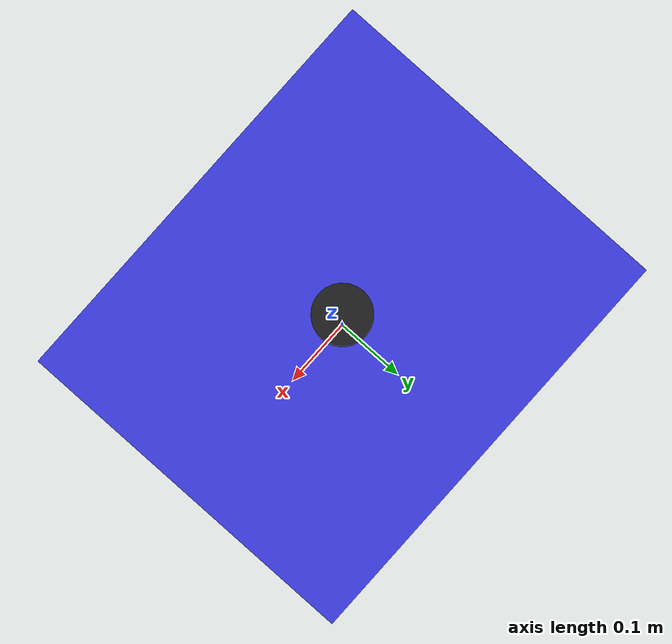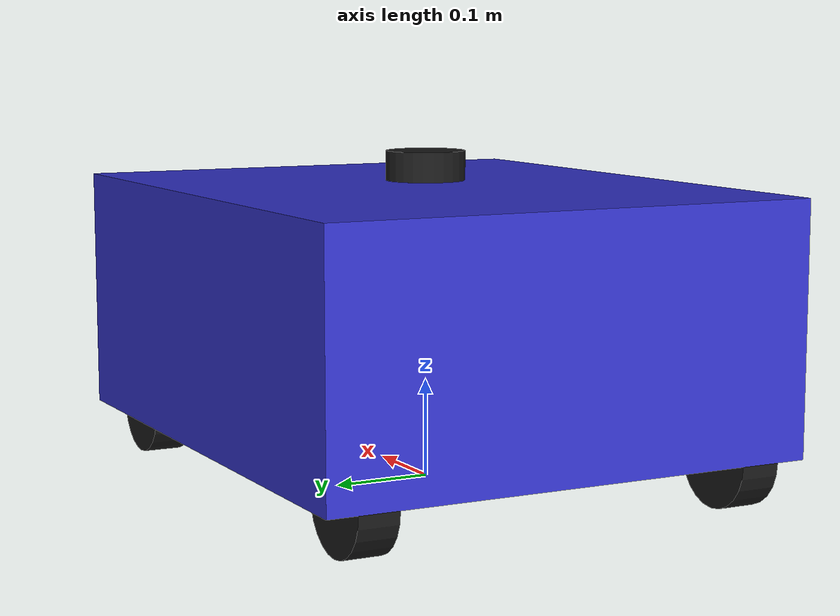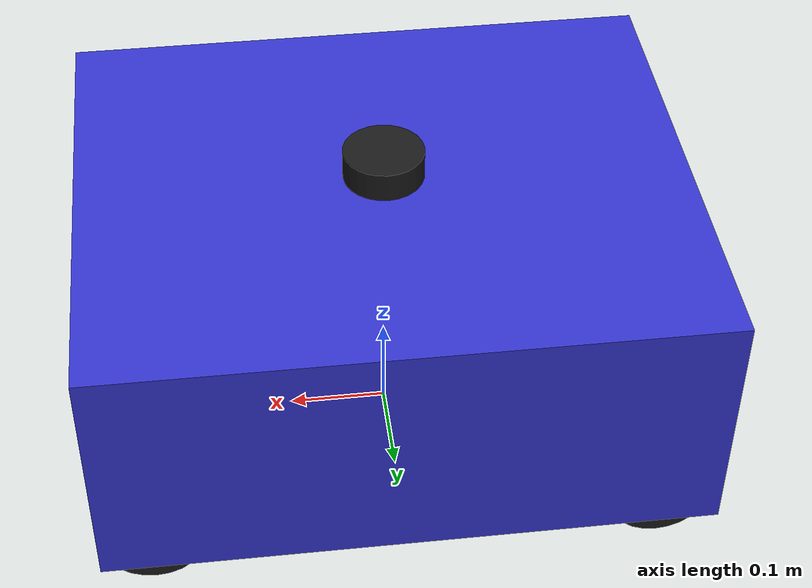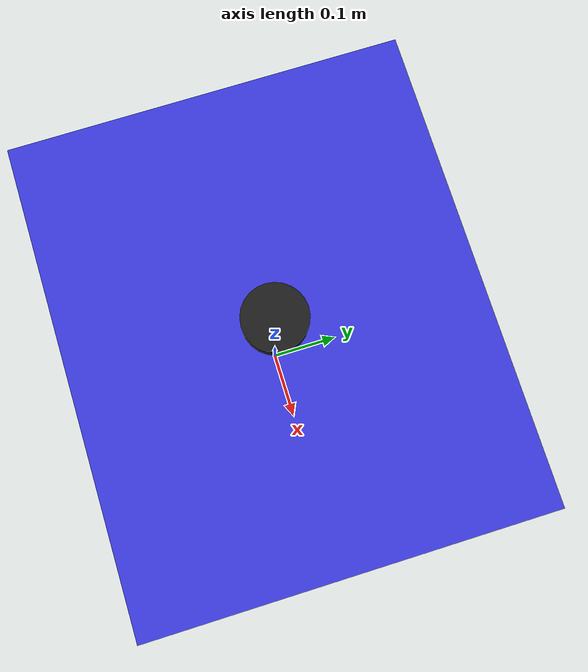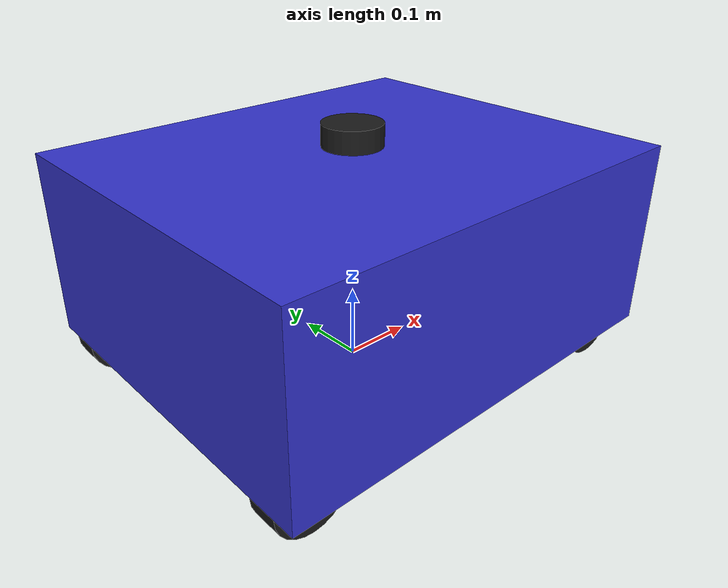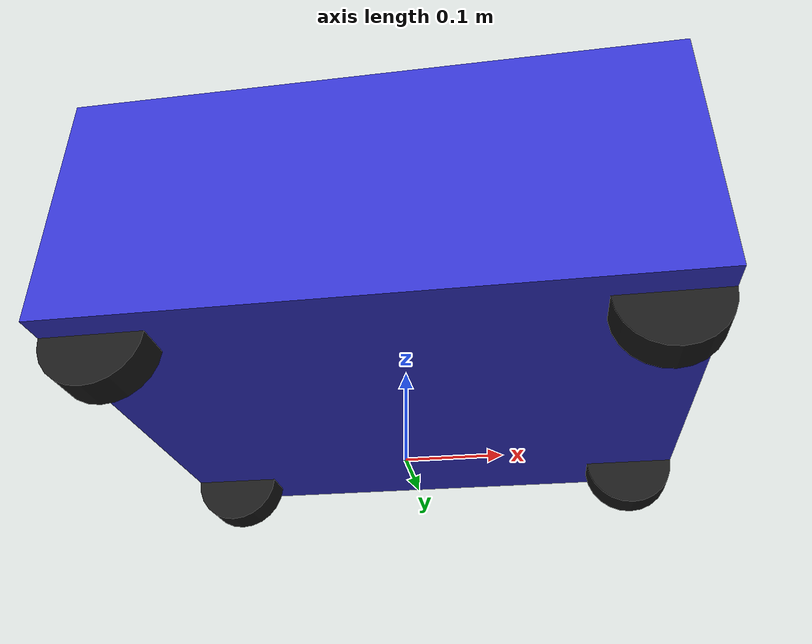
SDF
<?xml version="1.0" ?>
<sdf version="1.9">
  <model name="uni_agv">
    <self_collide>false</self_collide>
    <link name="chassis">
      <pose>0 0 0.175 0 0 0</pose>
      <inertial>
        <mass>30.0</mass>
        <inertia>
          <ixx>0.781250</ixx>
          <ixy>0</ixy>
          <ixz>0</ixz>
          <iyy>1.056250</iyy>
          <iyz>0</iyz>
          <izz>1.525000</izz>
        </inertia>
      </inertial>
      <visual name="chassis_visual">
        <geometry>
          <box>
            <size>0.6 0.5 0.25</size>
          </box>
        </geometry>
        <material>
          <ambient>0.2 0.2 0.8 1.0</ambient>
          <diffuse>0.2 0.2 0.8 1.0</diffuse>
        </material>
      </visual>
      <collision name="chassis_collision">
        <geometry>
          <box>
            <size>0.6 0.5 0.25</size>
          </box>
        </geometry>
      </collision>
    </link>
    <link name="front_left_wheel">
      <pose>0.25 0.2 0.05 1.5707963267948966 0 0</pose>
      <inertial>
        <mass>1.0</mass>
        <inertia>
          <ixx>0.000758</ixx>
          <ixy>0</ixy>
          <ixz>0</ixz>
          <iyy>0.000758</iyy>
          <iyz>0</iyz>
          <izz>0.001250</izz>
        </inertia>
      </inertial>
      <visual name="front_left_wheel_visual">
        <geometry>
          <cylinder>
            <radius>0.05</radius>
            <length>0.04</length>
          </cylinder>
        </geometry>
        <material>
          <ambient>0.1 0.1 0.1 1.0</ambient>
          <diffuse>0.1 0.1 0.1 1.0</diffuse>
        </material>
      </visual>
      <collision name="front_left_wheel_collision">
        <geometry>
          <cylinder>
            <radius>0.05</radius>
            <length>0.04</length>
          </cylinder>
        </geometry>
        <surface>
          <friction>
            <ode>
              <mu>1.0</mu>
              <mu2>1.0</mu2>
            </ode>
          </friction>
        </surface>
      </collision>
    </link>
    <joint name="front_left_wheel_joint" type="revolute">
      <parent>chassis</parent>
      <child>front_left_wheel</child>
      <axis>
        <xyz>0 0 1</xyz>
        <limit>
          <lower>-1e16</lower>
          <upper>1e16</upper>
        </limit>
      </axis>
    </joint>
    <link name="front_right_wheel">
      <pose>0.25 -0.2 0.05 1.5707963267948966 0 0</pose>
      <inertial>
        <mass>1.0</mass>
        <inertia>
          <ixx>0.000758</ixx>
          <ixy>0</ixy>
          <ixz>0</ixz>
          <iyy>0.000758</iyy>
          <iyz>0</iyz>
          <izz>0.001250</izz>
        </inertia>
      </inertial>
      <visual name="front_right_wheel_visual">
        <geometry>
          <cylinder>
            <radius>0.05</radius>
            <length>0.04</length>
          </cylinder>
        </geometry>
        <material>
          <ambient>0.1 0.1 0.1 1.0</ambient>
          <diffuse>0.1 0.1 0.1 1.0</diffuse>
        </material>
      </visual>
      <collision name="front_right_wheel_collision">
        <geometry>
          <cylinder>
            <radius>0.05</radius>
            <length>0.04</length>
          </cylinder>
        </geometry>
        <surface>
          <friction>
            <ode>
              <mu>1.0</mu>
              <mu2>1.0</mu2>
            </ode>
          </friction>
        </surface>
      </collision>
    </link>
    <joint name="front_right_wheel_joint" type="revolute">
      <parent>chassis</parent>
      <child>front_right_wheel</child>
      <axis>
        <xyz>0 0 1</xyz>
        <limit>
          <lower>-1e16</lower>
          <upper>1e16</upper>
        </limit>
      </axis>
    </joint>
    <link name="rear_left_wheel">
      <pose>-0.25 0.2 0.05 1.5707963267948966 0 0</pose>
      <inertial>
        <mass>1.0</mass>
        <inertia>
          <ixx>0.000758</ixx>
          <ixy>0</ixy>
          <ixz>0</ixz>
          <iyy>0.000758</iyy>
          <iyz>0</iyz>
          <izz>0.001250</izz>
        </inertia>
      </inertial>
      <visual name="rear_left_wheel_visual">
        <geometry>
          <cylinder>
            <radius>0.05</radius>
            <length>0.04</length>
          </cylinder>
        </geometry>
        <material>
          <ambient>0.1 0.1 0.1 1.0</ambient>
          <diffuse>0.1 0.1 0.1 1.0</diffuse>
        </material>
      </visual>
      <collision name="rear_left_wheel_collision">
        <geometry>
          <cylinder>
            <radius>0.05</radius>
            <length>0.04</length>
          </cylinder>
        </geometry>
        <surface>
          <friction>
            <ode>
              <mu>1.0</mu>
              <mu2>1.0</mu2>
            </ode>
          </friction>
        </surface>
      </collision>
    </link>
    <joint name="rear_left_wheel_joint" type="revolute">
      <parent>chassis</parent>
      <child>rear_left_wheel</child>
      <axis>
        <xyz>0 0 1</xyz>
        <limit>
          <lower>-1e16</lower>
          <upper>1e16</upper>
        </limit>
      </axis>
    </joint>
    <link name="rear_right_wheel">
      <pose>-0.25 -0.2 0.05 1.5707963267948966 0 0</pose>
      <inertial>
        <mass>1.0</mass>
        <inertia>
          <ixx>0.000758</ixx>
          <ixy>0</ixy>
          <ixz>0</ixz>
          <iyy>0.000758</iyy>
          <iyz>0</iyz>
          <izz>0.001250</izz>
        </inertia>
      </inertial>
      <visual name="rear_right_wheel_visual">
        <geometry>
          <cylinder>
            <radius>0.05</radius>
            <length>0.04</length>
          </cylinder>
        </geometry>
        <material>
          <ambient>0.1 0.1 0.1 1.0</ambient>
          <diffuse>0.1 0.1 0.1 1.0</diffuse>
        </material>
      </visual>
      <collision name="rear_right_wheel_collision">
        <geometry>
          <cylinder>
            <radius>0.05</radius>
            <length>0.04</length>
          </cylinder>
        </geometry>
        <surface>
          <friction>
            <ode>
              <mu>1.0</mu>
              <mu2>1.0</mu2>
            </ode>
          </friction>
        </surface>
      </collision>
    </link>
    <joint name="rear_right_wheel_joint" type="revolute">
      <parent>chassis</parent>
      <child>rear_right_wheel</child>
      <axis>
        <xyz>0 0 1</xyz>
        <limit>
          <lower>-1e16</lower>
          <upper>1e16</upper>
        </limit>
      </axis>
    </joint>
    <plugin filename="gz-sim-diff-drive-system" name="gz::sim::systems::DiffDrive">
      <left_joint>front_left_wheel_joint</left_joint>
      <right_joint>front_right_wheel_joint</right_joint>
      <wheel_separation>0.4</wheel_separation>
      <wheel_radius>0.05</wheel_radius>
      <max_linear_acceleration>0.8</max_linear_acceleration>
      <max_angular_velocity>1.57</max_angular_velocity>
      <topic>cmd_vel</topic>
      <odom_topic>odom</odom_topic>
      <tf_topic>tf</tf_topic>
      <frame_id>odom</frame_id>
      <child_frame_id>chassis</child_frame_id>
      <odom_publish_frequency>15</odom_publish_frequency>
    </plugin>
    <link name="lidar_link">
      <pose>0 0 0.32 0 0 0</pose>
      <inertial>
        <mass>0.1</mass>
        <inertia>
          <ixx>0.000047</ixx>
          <ixy>0</ixy>
          <ixz>0</ixz>
          <iyy>0.000047</iyy>
          <iyz>0</iyz>
          <izz>0.000080</izz>
        </inertia>
      </inertial>
      <visual name="lidar_puck_visual">
        <geometry>
          <cylinder>
            <radius>0.04</radius>
            <length>0.03</length>
          </cylinder>
        </geometry>
        <material>
          <ambient>0.1 0.1 0.1 1.0</ambient>
          <diffuse>0.1 0.1 0.1 1.0</diffuse>
        </material>
      </visual>
      <collision name="lidar_puck_collision">
        <geometry>
          <cylinder>
            <radius>0.04</radius>
            <length>0.03</length>
          </cylinder>
        </geometry>
      </collision>
      <sensor name="lidar_sensor" type="gpu_lidar">
        <always_on>true</always_on>
        <update_rate>10</update_rate>
        <visualize>true</visualize>
        <topic>lidar</topic>
        <ray>
          <scan>
            <horizontal>
              <samples>30</samples>
              <resolution>1</resolution>
              <min_angle>-0.261799</min_angle>
              <max_angle>0.261799</max_angle>
            </horizontal>
          </scan>
          <range>
            <min>0.08</min>
            <max>1.5</max>
            <resolution>0.01</resolution>
          </range>
          <noise>
            <type>gaussian</type>
            <mean>0.0</mean>
            <stddev>0.03</stddev>
          </noise>
        </ray>
      </sensor>
    </link>
    <joint name="lidar_joint" type="fixed">
      <parent>chassis</parent>
      <child>lidar_link</child>
    </joint>
    <plugin filename="gz-sim-joint-state-publisher-system" name="gz::sim::systems::JointStatePublisher"/>
  </model>
</sdf>
